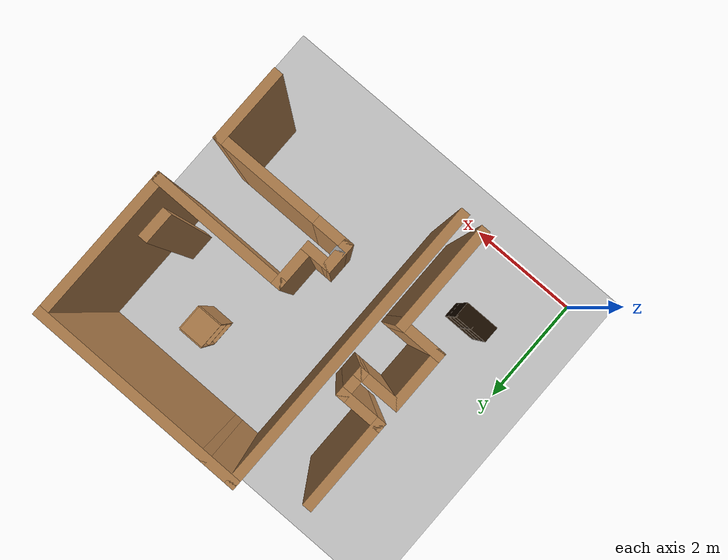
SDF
<sdf version="1.6">
 <world name="default">
  <model name="ground_plane">
   <static>1</static>
   <link name="link">
    <collision name="collision">
     <geometry><plane><normal>0 0 1</normal><size>100 100</size></plane></geometry>
     <surface><friction><ode><mu>100</mu><mu2>50</mu2></ode></friction></surface>
    </collision>
    <visual name="visual">
     <cast_shadows>0</cast_shadows>
     <geometry><plane><normal>0 0 1</normal><size>100 100</size></plane></geometry>
     <material>
      <script><uri>file://media/materials/scripts/gazebo.material</uri><name>Gazebo/Grey</name></script>
     </material>
    </visual>
   </link>
  </model>
  <model name="map_30">
   <link name="Wall_125">
    <pose>5.90506 1.81618 0 0 -0 1.5708</pose>
    <visual name="Wall_125_Visual">
     <pose>0 0 1.25 0 -0 0</pose>
     <geometry><box><size>1.25 0.15 2.5</size></box></geometry>
     <material>
      <script><uri>file://media/materials/scripts/gazebo.material</uri><name>Gazebo/Wood</name></script>
      <ambient>1 1 1 1</ambient>
      <shader type="pixel"/>
     </material>
     <meta><layer>0</layer></meta>
    </visual>
    <collision name="Wall_125_Collision">
     <pose>0 0 1.25 0 -0 0</pose>
     <geometry><box><size>1.25 0.15 2.5</size></box></geometry>
     <surface>
      <friction>
       <ode><mu>1</mu><mu2>1</mu2><fdir1>0 0 0</fdir1><slip1>0</slip1><slip2>0</slip2></ode>
       <torsional>
        <coefficient>1</coefficient>
        <patch_radius>0</patch_radius>
        <surface_radius>0</surface_radius>
        <use_patch_radius>1</use_patch_radius>
        <ode><slip>0</slip></ode>
       </torsional>
      </friction>
      <bounce><restitution_coefficient>0</restitution_coefficient><threshold>1e+06</threshold></bounce>
      <contact>
       <collide_without_contact>0</collide_without_contact>
       <collide_without_contact_bitmask>1</collide_without_contact_bitmask>
       <collide_bitmask>1</collide_bitmask>
       <ode>
        <soft_cfm>0</soft_cfm>
        <soft_erp>0.2</soft_erp>
        <kp>1e+13</kp>
        <kd>1</kd>
        <max_vel>0.01</max_vel>
        <min_depth>0</min_depth>
       </ode>
       <bullet>
        <split_impulse>1</split_impulse>
        <split_impulse_penetration_threshold>-0.01</split_impulse_penetration_threshold>
        <soft_cfm>0</soft_cfm>
        <soft_erp>0.2</soft_erp>
        <kp>1e+13</kp>
        <kd>1</kd>
       </bullet>
      </contact>
     </surface>
    </collision>
   </link>
   <link name="Wall_126">
    <pose>5.10506 2.36618 0 0 -0 3.14159</pose>
    <visual name="Wall_126_Visual">
     <pose>0 0 1.25 0 -0 0</pose>
     <geometry><box><size>1.75 0.15 2.5</size></box></geometry>
     <material>
      <script><uri>file://media/materials/scripts/gazebo.material</uri><name>Gazebo/Wood</name></script>
      <ambient>1 1 1 1</ambient>
      <shader type="pixel"/>
     </material>
     <meta><layer>0</layer></meta>
    </visual>
    <collision name="Wall_126_Collision">
     <pose>0 0 1.25 0 -0 0</pose>
     <geometry><box><size>1.75 0.15 2.5</size></box></geometry>
     <surface>
      <friction>
       <ode><mu>1</mu><mu2>1</mu2><fdir1>0 0 0</fdir1><slip1>0</slip1><slip2>0</slip2></ode>
       <torsional>
        <coefficient>1</coefficient>
        <patch_radius>0</patch_radius>
        <surface_radius>0</surface_radius>
        <use_patch_radius>1</use_patch_radius>
        <ode><slip>0</slip></ode>
       </torsional>
      </friction>
      <bounce><restitution_coefficient>0</restitution_coefficient><threshold>1e+06</threshold></bounce>
      <contact>
       <collide_without_contact>0</collide_without_contact>
       <collide_without_contact_bitmask>1</collide_without_contact_bitmask>
       <collide_bitmask>1</collide_bitmask>
       <ode>
        <soft_cfm>0</soft_cfm>
        <soft_erp>0.2</soft_erp>
        <kp>1e+13</kp>
        <kd>1</kd>
        <max_vel>0.01</max_vel>
        <min_depth>0</min_depth>
       </ode>
       <bullet>
        <split_impulse>1</split_impulse>
        <split_impulse_penetration_threshold>-0.01</split_impulse_penetration_threshold>
        <soft_cfm>0</soft_cfm>
        <soft_erp>0.2</soft_erp>
        <kp>1e+13</kp>
        <kd>1</kd>
       </bullet>
      </contact>
     </surface>
    </collision>
   </link>
   <link name="Wall_128">
    <pose>3.7255 2.52147 0 0 -0 0</pose>
    <visual name="Wall_128_Visual">
     <pose>0 0 1.25 0 -0 0</pose>
     <geometry><box><size>0.15 0.15 2.5</size></box></geometry>
     <material>
      <script><uri>file://media/materials/scripts/gazebo.material</uri><name>Gazebo/Grey</name></script>
      <ambient>1 1 1 1</ambient>
      <shader type="pixel"/>
     </material>
     <meta><layer>0</layer></meta>
    </visual>
    <collision name="Wall_128_Collision">
     <pose>0 0 1.25 0 -0 0</pose>
     <geometry><box><size>0.15 0.15 2.5</size></box></geometry>
     <surface>
      <friction>
       <ode><mu>1</mu><mu2>1</mu2><fdir1>0 0 0</fdir1><slip1>0</slip1><slip2>0</slip2></ode>
       <torsional>
        <coefficient>1</coefficient>
        <patch_radius>0</patch_radius>
        <surface_radius>0</surface_radius>
        <use_patch_radius>1</use_patch_radius>
        <ode><slip>0</slip></ode>
       </torsional>
      </friction>
      <bounce><restitution_coefficient>0</restitution_coefficient><threshold>1e+06</threshold></bounce>
      <contact>
       <collide_without_contact>0</collide_without_contact>
       <collide_without_contact_bitmask>1</collide_without_contact_bitmask>
       <collide_bitmask>1</collide_bitmask>
       <ode>
        <soft_cfm>0</soft_cfm>
        <soft_erp>0.2</soft_erp>
        <kp>1e+13</kp>
        <kd>1</kd>
        <max_vel>0.01</max_vel>
        <min_depth>0</min_depth>
       </ode>
       <bullet>
        <split_impulse>1</split_impulse>
        <split_impulse_penetration_threshold>-0.01</split_impulse_penetration_threshold>
        <soft_cfm>0</soft_cfm>
        <soft_erp>0.2</soft_erp>
        <kp>1e+13</kp>
        <kd>1</kd>
       </bullet>
      </contact>
     </surface>
    </collision>
   </link>
   <link name="Wall_130">
    <pose>4.00506 2.36618 0 0 -0 3.14159</pose>
    <visual name="Wall_130_Visual">
     <pose>0 0 1.25 0 -0 0</pose>
     <geometry><box><size>0.75 0.15 2.5</size></box></geometry>
     <material>
      <script><uri>file://media/materials/scripts/gazebo.material</uri><name>Gazebo/Wood</name></script>
      <ambient>1 1 1 1</ambient>
      <shader type="pixel"/>
     </material>
     <meta><layer>0</layer></meta>
    </visual>
    <collision name="Wall_130_Collision">
     <pose>0 0 1.25 0 -0 0</pose>
     <geometry><box><size>0.75 0.15 2.5</size></box></geometry>
     <surface>
      <friction>
       <ode><mu>1</mu><mu2>1</mu2><fdir1>0 0 0</fdir1><slip1>0</slip1><slip2>0</slip2></ode>
       <torsional>
        <coefficient>1</coefficient>
        <patch_radius>0</patch_radius>
        <surface_radius>0</surface_radius>
        <use_patch_radius>1</use_patch_radius>
        <ode><slip>0</slip></ode>
       </torsional>
      </friction>
      <bounce><restitution_coefficient>0</restitution_coefficient><threshold>1e+06</threshold></bounce>
      <contact>
       <collide_without_contact>0</collide_without_contact>
       <collide_without_contact_bitmask>1</collide_without_contact_bitmask>
       <collide_bitmask>1</collide_bitmask>
       <ode>
        <soft_cfm>0</soft_cfm>
        <soft_erp>0.2</soft_erp>
        <kp>1e+13</kp>
        <kd>1</kd>
        <max_vel>0.01</max_vel>
        <min_depth>0</min_depth>
       </ode>
       <bullet>
        <split_impulse>1</split_impulse>
        <split_impulse_penetration_threshold>-0.01</split_impulse_penetration_threshold>
        <soft_cfm>0</soft_cfm>
        <soft_erp>0.2</soft_erp>
        <kp>1e+13</kp>
        <kd>1</kd>
       </bullet>
      </contact>
     </surface>
    </collision>
   </link>
   <link name="Wall_131">
    <pose>3.70506 2.54118 0 0 -0 1.5708</pose>
    <visual name="Wall_131_Visual">
     <pose>0 0 1.25 0 -0 0</pose>
     <geometry><box><size>0.5 0.15 2.5</size></box></geometry>
     <material>
      <script><uri>file://media/materials/scripts/gazebo.material</uri><name>Gazebo/Wood</name></script>
      <ambient>1 1 1 1</ambient>
      <shader type="pixel"/>
     </material>
     <meta><layer>0</layer></meta>
    </visual>
    <collision name="Wall_131_Collision">
     <pose>0 0 1.25 0 -0 0</pose>
     <geometry><box><size>0.5 0.15 2.5</size></box></geometry>
     <surface>
      <friction>
       <ode><mu>1</mu><mu2>1</mu2><fdir1>0 0 0</fdir1><slip1>0</slip1><slip2>0</slip2></ode>
       <torsional>
        <coefficient>1</coefficient>
        <patch_radius>0</patch_radius>
        <surface_radius>0</surface_radius>
        <use_patch_radius>1</use_patch_radius>
        <ode><slip>0</slip></ode>
       </torsional>
      </friction>
      <bounce><restitution_coefficient>0</restitution_coefficient><threshold>1e+06</threshold></bounce>
      <contact>
       <collide_without_contact>0</collide_without_contact>
       <collide_without_contact_bitmask>1</collide_without_contact_bitmask>
       <collide_bitmask>1</collide_bitmask>
       <ode>
        <soft_cfm>0</soft_cfm>
        <soft_erp>0.2</soft_erp>
        <kp>1e+13</kp>
        <kd>1</kd>
        <max_vel>0.01</max_vel>
        <min_depth>0</min_depth>
       </ode>
       <bullet>
        <split_impulse>1</split_impulse>
        <split_impulse_penetration_threshold>-0.01</split_impulse_penetration_threshold>
        <soft_cfm>0</soft_cfm>
        <soft_erp>0.2</soft_erp>
        <kp>1e+13</kp>
        <kd>1</kd>
       </bullet>
      </contact>
     </surface>
    </collision>
   </link>
   <link name="Wall_132">
    <pose>3.88006 2.71618 0 0 -0 0</pose>
    <visual name="Wall_132_Visual">
     <pose>0 0 1.25 0 -0 0</pose>
     <geometry><box><size>0.5 0.15 2.5</size></box></geometry>
     <material>
      <script><uri>file://media/materials/scripts/gazebo.material</uri><name>Gazebo/Wood</name></script>
      <ambient>1 1 1 1</ambient>
      <shader type="pixel"/>
     </material>
     <meta><layer>0</layer></meta>
    </visual>
    <collision name="Wall_132_Collision">
     <pose>0 0 1.25 0 -0 0</pose>
     <geometry><box><size>0.5 0.15 2.5</size></box></geometry>
     <surface>
      <friction>
       <ode><mu>1</mu><mu2>1</mu2><fdir1>0 0 0</fdir1><slip1>0</slip1><slip2>0</slip2></ode>
       <torsional>
        <coefficient>1</coefficient>
        <patch_radius>0</patch_radius>
        <surface_radius>0</surface_radius>
        <use_patch_radius>1</use_patch_radius>
        <ode><slip>0</slip></ode>
       </torsional>
      </friction>
      <bounce><restitution_coefficient>0</restitution_coefficient><threshold>1e+06</threshold></bounce>
      <contact>
       <collide_without_contact>0</collide_without_contact>
       <collide_without_contact_bitmask>1</collide_without_contact_bitmask>
       <collide_bitmask>1</collide_bitmask>
       <ode>
        <soft_cfm>0</soft_cfm>
        <soft_erp>0.2</soft_erp>
        <kp>1e+13</kp>
        <kd>1</kd>
        <max_vel>0.01</max_vel>
        <min_depth>0</min_depth>
       </ode>
       <bullet>
        <split_impulse>1</split_impulse>
        <split_impulse_penetration_threshold>-0.01</split_impulse_penetration_threshold>
        <soft_cfm>0</soft_cfm>
        <soft_erp>0.2</soft_erp>
        <kp>1e+13</kp>
        <kd>1</kd>
       </bullet>
      </contact>
     </surface>
    </collision>
   </link>
   <link name="Wall_133">
    <pose>4.05506 3.01618 0 0 -0 1.5708</pose>
    <visual name="Wall_133_Visual">
     <pose>0 0 1.25 0 -0 0</pose>
     <geometry><box><size>0.75 0.15 2.5</size></box></geometry>
     <material>
      <script><uri>file://media/materials/scripts/gazebo.material</uri><name>Gazebo/Wood</name></script>
      <ambient>1 1 1 1</ambient>
      <shader type="pixel"/>
     </material>
     <meta><layer>0</layer></meta>
    </visual>
    <collision name="Wall_133_Collision">
     <pose>0 0 1.25 0 -0 0</pose>
     <geometry><box><size>0.75 0.15 2.5</size></box></geometry>
     <surface>
      <friction>
       <ode><mu>1</mu><mu2>1</mu2><fdir1>0 0 0</fdir1><slip1>0</slip1><slip2>0</slip2></ode>
       <torsional>
        <coefficient>1</coefficient>
        <patch_radius>0</patch_radius>
        <surface_radius>0</surface_radius>
        <use_patch_radius>1</use_patch_radius>
        <ode><slip>0</slip></ode>
       </torsional>
      </friction>
      <bounce><restitution_coefficient>0</restitution_coefficient><threshold>1e+06</threshold></bounce>
      <contact>
       <collide_without_contact>0</collide_without_contact>
       <collide_without_contact_bitmask>1</collide_without_contact_bitmask>
       <collide_bitmask>1</collide_bitmask>
       <ode>
        <soft_cfm>0</soft_cfm>
        <soft_erp>0.2</soft_erp>
        <kp>1e+13</kp>
        <kd>1</kd>
        <max_vel>0.01</max_vel>
        <min_depth>0</min_depth>
       </ode>
       <bullet>
        <split_impulse>1</split_impulse>
        <split_impulse_penetration_threshold>-0.01</split_impulse_penetration_threshold>
        <soft_cfm>0</soft_cfm>
        <soft_erp>0.2</soft_erp>
        <kp>1e+13</kp>
        <kd>1</kd>
       </bullet>
      </contact>
     </surface>
    </collision>
   </link>
   <link name="Wall_134">
    <pose>5.10506 3.31618 0 0 -0 0</pose>
    <visual name="Wall_134_Visual">
     <pose>0 0 1.25 0 -0 0</pose>
     <geometry><box><size>2.25 0.15 2.5</size></box></geometry>
     <material>
      <script><uri>file://media/materials/scripts/gazebo.material</uri><name>Gazebo/Wood</name></script>
      <ambient>1 1 1 1</ambient>
      <shader type="pixel"/>
     </material>
     <meta><layer>0</layer></meta>
    </visual>
    <collision name="Wall_134_Collision">
     <pose>0 0 1.25 0 -0 0</pose>
     <geometry><box><size>2.25 0.15 2.5</size></box></geometry>
     <surface>
      <friction>
       <ode><mu>1</mu><mu2>1</mu2><fdir1>0 0 0</fdir1><slip1>0</slip1><slip2>0</slip2></ode>
       <torsional>
        <coefficient>1</coefficient>
        <patch_radius>0</patch_radius>
        <surface_radius>0</surface_radius>
        <use_patch_radius>1</use_patch_radius>
        <ode><slip>0</slip></ode>
       </torsional>
      </friction>
      <bounce><restitution_coefficient>0</restitution_coefficient><threshold>1e+06</threshold></bounce>
      <contact>
       <collide_without_contact>0</collide_without_contact>
       <collide_without_contact_bitmask>1</collide_without_contact_bitmask>
       <collide_bitmask>1</collide_bitmask>
       <ode>
        <soft_cfm>0</soft_cfm>
        <soft_erp>0.2</soft_erp>
        <kp>1e+13</kp>
        <kd>1</kd>
        <max_vel>0.01</max_vel>
        <min_depth>0</min_depth>
       </ode>
       <bullet>
        <split_impulse>1</split_impulse>
        <split_impulse_penetration_threshold>-0.01</split_impulse_penetration_threshold>
        <soft_cfm>0</soft_cfm>
        <soft_erp>0.2</soft_erp>
        <kp>1e+13</kp>
        <kd>1</kd>
       </bullet>
      </contact>
     </surface>
    </collision>
   </link>
   <link name="Wall_135">
    <pose>6.15506 4.49118 0 0 -0 1.5708</pose>
    <visual name="Wall_135_Visual">
     <pose>0 0 1.25 0 -0 0</pose>
     <geometry><box><size>2.5 0.15 2.5</size></box></geometry>
     <material>
      <script><uri>file://media/materials/scripts/gazebo.material</uri><name>Gazebo/Wood</name></script>
      <ambient>1 1 1 1</ambient>
      <shader type="pixel"/>
     </material>
     <meta><layer>0</layer></meta>
    </visual>
    <collision name="Wall_135_Collision">
     <pose>0 0 1.25 0 -0 0</pose>
     <geometry><box><size>2.5 0.15 2.5</size></box></geometry>
     <surface>
      <friction>
       <ode><mu>1</mu><mu2>1</mu2><fdir1>0 0 0</fdir1><slip1>0</slip1><slip2>0</slip2></ode>
       <torsional>
        <coefficient>1</coefficient>
        <patch_radius>0</patch_radius>
        <surface_radius>0</surface_radius>
        <use_patch_radius>1</use_patch_radius>
        <ode><slip>0</slip></ode>
       </torsional>
      </friction>
      <bounce><restitution_coefficient>0</restitution_coefficient><threshold>1e+06</threshold></bounce>
      <contact>
       <collide_without_contact>0</collide_without_contact>
       <collide_without_contact_bitmask>1</collide_without_contact_bitmask>
       <collide_bitmask>1</collide_bitmask>
       <ode>
        <soft_cfm>0</soft_cfm>
        <soft_erp>0.2</soft_erp>
        <kp>1e+13</kp>
        <kd>1</kd>
        <max_vel>0.01</max_vel>
        <min_depth>0</min_depth>
       </ode>
       <bullet>
        <split_impulse>1</split_impulse>
        <split_impulse_penetration_threshold>-0.01</split_impulse_penetration_threshold>
        <soft_cfm>0</soft_cfm>
        <soft_erp>0.2</soft_erp>
        <kp>1e+13</kp>
        <kd>1</kd>
       </bullet>
      </contact>
     </surface>
    </collision>
   </link>
   <link name="Wall_137">
    <pose>3.30506 5.66618 0 0 -0 0</pose>
    <visual name="Wall_137_Visual">
     <pose>0 0 1.25 0 -0 0</pose>
     <geometry><box><size>0.15 0.15 2.5</size></box></geometry>
     <material>
      <script><uri>file://media/materials/scripts/gazebo.material</uri><name>Gazebo/Wood</name></script>
      <ambient>1 1 1 1</ambient>
      <shader type="pixel"/>
     </material>
     <meta><layer>0</layer></meta>
    </visual>
    <collision name="Wall_137_Collision">
     <pose>0 0 1.25 0 -0 0</pose>
     <geometry><box><size>0.15 0.15 2.5</size></box></geometry>
     <surface>
      <friction>
       <ode><mu>1</mu><mu2>1</mu2><fdir1>0 0 0</fdir1><slip1>0</slip1><slip2>0</slip2></ode>
       <torsional>
        <coefficient>1</coefficient>
        <patch_radius>0</patch_radius>
        <surface_radius>0</surface_radius>
        <use_patch_radius>1</use_patch_radius>
        <ode><slip>0</slip></ode>
       </torsional>
      </friction>
      <bounce><restitution_coefficient>0</restitution_coefficient><threshold>1e+06</threshold></bounce>
      <contact>
       <collide_without_contact>0</collide_without_contact>
       <collide_without_contact_bitmask>1</collide_without_contact_bitmask>
       <collide_bitmask>1</collide_bitmask>
       <ode>
        <soft_cfm>0</soft_cfm>
        <soft_erp>0.2</soft_erp>
        <kp>1e+13</kp>
        <kd>1</kd>
        <max_vel>0.01</max_vel>
        <min_depth>0</min_depth>
       </ode>
       <bullet>
        <split_impulse>1</split_impulse>
        <split_impulse_penetration_threshold>-0.01</split_impulse_penetration_threshold>
        <soft_cfm>0</soft_cfm>
        <soft_erp>0.2</soft_erp>
        <kp>1e+13</kp>
        <kd>1</kd>
       </bullet>
      </contact>
     </surface>
    </collision>
   </link>
   <link name="Wall_143">
    <pose>4.48006 5.66618 0 0 -0 3.14159</pose>
    <visual name="Wall_143_Visual">
     <pose>0 0 1.25 0 -0 0</pose>
     <geometry><box><size>3.5 0.15 2.5</size></box></geometry>
     <material>
      <script><uri>file://media/materials/scripts/gazebo.material</uri><name>Gazebo/Wood</name></script>
      <ambient>1 1 1 1</ambient>
      <shader type="pixel"/>
     </material>
     <meta><layer>0</layer></meta>
    </visual>
    <collision name="Wall_143_Collision">
     <pose>0 0 1.25 0 -0 0</pose>
     <geometry><box><size>3.5 0.15 2.5</size></box></geometry>
     <surface>
      <friction>
       <ode><mu>1</mu><mu2>1</mu2><fdir1>0 0 0</fdir1><slip1>0</slip1><slip2>0</slip2></ode>
       <torsional>
        <coefficient>1</coefficient>
        <patch_radius>0</patch_radius>
        <surface_radius>0</surface_radius>
        <use_patch_radius>1</use_patch_radius>
        <ode><slip>0</slip></ode>
       </torsional>
      </friction>
      <bounce><restitution_coefficient>0</restitution_coefficient><threshold>1e+06</threshold></bounce>
      <contact>
       <collide_without_contact>0</collide_without_contact>
       <collide_without_contact_bitmask>1</collide_without_contact_bitmask>
       <collide_bitmask>1</collide_bitmask>
       <ode>
        <soft_cfm>0</soft_cfm>
        <soft_erp>0.2</soft_erp>
        <kp>1e+13</kp>
        <kd>1</kd>
        <max_vel>0.01</max_vel>
        <min_depth>0</min_depth>
       </ode>
       <bullet>
        <split_impulse>1</split_impulse>
        <split_impulse_penetration_threshold>-0.01</split_impulse_penetration_threshold>
        <soft_cfm>0</soft_cfm>
        <soft_erp>0.2</soft_erp>
        <kp>1e+13</kp>
        <kd>1</kd>
       </bullet>
      </contact>
     </surface>
    </collision>
   </link>
   <link name="Wall_144">
    <pose>2.80506 3.36618 0 0 0 -1.5708</pose>
    <visual name="Wall_144_Visual">
     <pose>0 0 1.25 0 -0 0</pose>
     <geometry><box><size>4.75 0.15 2.5</size></box></geometry>
     <material>
      <script><uri>file://media/materials/scripts/gazebo.material</uri><name>Gazebo/Wood</name></script>
      <ambient>1 1 1 1</ambient>
      <shader type="pixel"/>
     </material>
     <meta><layer>0</layer></meta>
    </visual>
    <collision name="Wall_144_Collision">
     <pose>0 0 1.25 0 -0 0</pose>
     <geometry><box><size>4.75 0.15 2.5</size></box></geometry>
     <surface>
      <friction>
       <ode><mu>1</mu><mu2>1</mu2><fdir1>0 0 0</fdir1><slip1>0</slip1><slip2>0</slip2></ode>
       <torsional>
        <coefficient>1</coefficient>
        <patch_radius>0</patch_radius>
        <surface_radius>0</surface_radius>
        <use_patch_radius>1</use_patch_radius>
        <ode><slip>0</slip></ode>
       </torsional>
      </friction>
      <bounce><restitution_coefficient>0</restitution_coefficient><threshold>1e+06</threshold></bounce>
      <contact>
       <collide_without_contact>0</collide_without_contact>
       <collide_without_contact_bitmask>1</collide_without_contact_bitmask>
       <collide_bitmask>1</collide_bitmask>
       <ode>
        <soft_cfm>0</soft_cfm>
        <soft_erp>0.2</soft_erp>
        <kp>1e+13</kp>
        <kd>1</kd>
        <max_vel>0.01</max_vel>
        <min_depth>0</min_depth>
       </ode>
       <bullet>
        <split_impulse>1</split_impulse>
        <split_impulse_penetration_threshold>-0.01</split_impulse_penetration_threshold>
        <soft_cfm>0</soft_cfm>
        <soft_erp>0.2</soft_erp>
        <kp>1e+13</kp>
        <kd>1</kd>
       </bullet>
      </contact>
     </surface>
    </collision>
   </link>
   <link name="Wall_146">
    <pose>2.45506 1.86618 0 0 -0 1.5708</pose>
    <visual name="Wall_146_Visual">
     <pose>0 0 1.25 0 -0 0</pose>
     <geometry><box><size>1.75 0.15 2.5</size></box></geometry>
     <material>
      <script><uri>file://media/materials/scripts/gazebo.material</uri><name>Gazebo/Wood</name></script>
      <ambient>1 1 1 1</ambient>
      <shader type="pixel"/>
     </material>
     <meta><layer>0</layer></meta>
    </visual>
    <collision name="Wall_146_Collision">
     <pose>0 0 1.25 0 -0 0</pose>
     <geometry><box><size>1.75 0.15 2.5</size></box></geometry>
     <surface>
      <friction>
       <ode><mu>1</mu><mu2>1</mu2><fdir1>0 0 0</fdir1><slip1>0</slip1><slip2>0</slip2></ode>
       <torsional>
        <coefficient>1</coefficient>
        <patch_radius>0</patch_radius>
        <surface_radius>0</surface_radius>
        <use_patch_radius>1</use_patch_radius>
        <ode><slip>0</slip></ode>
       </torsional>
      </friction>
      <bounce><restitution_coefficient>0</restitution_coefficient><threshold>1e+06</threshold></bounce>
      <contact>
       <collide_without_contact>0</collide_without_contact>
       <collide_without_contact_bitmask>1</collide_without_contact_bitmask>
       <collide_bitmask>1</collide_bitmask>
       <ode>
        <soft_cfm>0</soft_cfm>
        <soft_erp>0.2</soft_erp>
        <kp>1e+13</kp>
        <kd>1</kd>
        <max_vel>0.01</max_vel>
        <min_depth>0</min_depth>
       </ode>
       <bullet>
        <split_impulse>1</split_impulse>
        <split_impulse_penetration_threshold>-0.01</split_impulse_penetration_threshold>
        <soft_cfm>0</soft_cfm>
        <soft_erp>0.2</soft_erp>
        <kp>1e+13</kp>
        <kd>1</kd>
       </bullet>
      </contact>
     </surface>
    </collision>
   </link>
   <link name="Wall_147">
    <pose>2.15506 2.66618 0 0 -0 3.14159</pose>
    <visual name="Wall_147_Visual">
     <pose>0 0 1.25 0 -0 0</pose>
     <geometry><box><size>0.75 0.15 2.5</size></box></geometry>
     <material>
      <script><uri>file://media/materials/scripts/gazebo.material</uri><name>Gazebo/Wood</name></script>
      <ambient>1 1 1 1</ambient>
      <shader type="pixel"/>
     </material>
     <meta><layer>0</layer></meta>
    </visual>
    <collision name="Wall_147_Collision">
     <pose>0 0 1.25 0 -0 0</pose>
     <geometry><box><size>0.75 0.15 2.5</size></box></geometry>
     <surface>
      <friction>
       <ode><mu>1</mu><mu2>1</mu2><fdir1>0 0 0</fdir1><slip1>0</slip1><slip2>0</slip2></ode>
       <torsional>
        <coefficient>1</coefficient>
        <patch_radius>0</patch_radius>
        <surface_radius>0</surface_radius>
        <use_patch_radius>1</use_patch_radius>
        <ode><slip>0</slip></ode>
       </torsional>
      </friction>
      <bounce><restitution_coefficient>0</restitution_coefficient><threshold>1e+06</threshold></bounce>
      <contact>
       <collide_without_contact>0</collide_without_contact>
       <collide_without_contact_bitmask>1</collide_without_contact_bitmask>
       <collide_bitmask>1</collide_bitmask>
       <ode>
        <soft_cfm>0</soft_cfm>
        <soft_erp>0.2</soft_erp>
        <kp>1e+13</kp>
        <kd>1</kd>
        <max_vel>0.01</max_vel>
        <min_depth>0</min_depth>
       </ode>
       <bullet>
        <split_impulse>1</split_impulse>
        <split_impulse_penetration_threshold>-0.01</split_impulse_penetration_threshold>
        <soft_cfm>0</soft_cfm>
        <soft_erp>0.2</soft_erp>
        <kp>1e+13</kp>
        <kd>1</kd>
       </bullet>
      </contact>
     </surface>
    </collision>
   </link>
   <link name="Wall_148">
    <pose>1.85506 3.09118 0 0 -0 1.5708</pose>
    <visual name="Wall_148_Visual">
     <pose>0 0 1.25 0 -0 0</pose>
     <geometry><box><size>1 0.15 2.5</size></box></geometry>
     <material>
      <script><uri>file://media/materials/scripts/gazebo.material</uri><name>Gazebo/Wood</name></script>
      <ambient>1 1 1 1</ambient>
      <shader type="pixel"/>
     </material>
     <meta><layer>0</layer></meta>
    </visual>
    <collision name="Wall_148_Collision">
     <pose>0 0 1.25 0 -0 0</pose>
     <geometry><box><size>1 0.15 2.5</size></box></geometry>
     <surface>
      <friction>
       <ode><mu>1</mu><mu2>1</mu2><fdir1>0 0 0</fdir1><slip1>0</slip1><slip2>0</slip2></ode>
       <torsional>
        <coefficient>1</coefficient>
        <patch_radius>0</patch_radius>
        <surface_radius>0</surface_radius>
        <use_patch_radius>1</use_patch_radius>
        <ode><slip>0</slip></ode>
       </torsional>
      </friction>
      <bounce><restitution_coefficient>0</restitution_coefficient><threshold>1e+06</threshold></bounce>
      <contact>
       <collide_without_contact>0</collide_without_contact>
       <collide_without_contact_bitmask>1</collide_without_contact_bitmask>
       <collide_bitmask>1</collide_bitmask>
       <ode>
        <soft_cfm>0</soft_cfm>
        <soft_erp>0.2</soft_erp>
        <kp>1e+13</kp>
        <kd>1</kd>
        <max_vel>0.01</max_vel>
        <min_depth>0</min_depth>
       </ode>
       <bullet>
        <split_impulse>1</split_impulse>
        <split_impulse_penetration_threshold>-0.01</split_impulse_penetration_threshold>
        <soft_cfm>0</soft_cfm>
        <soft_erp>0.2</soft_erp>
        <kp>1e+13</kp>
        <kd>1</kd>
       </bullet>
      </contact>
     </surface>
    </collision>
   </link>
   <link name="Wall_149">
    <pose>2.15506 3.51618 0 0 -0 0</pose>
    <visual name="Wall_149_Visual">
     <pose>0 0 1.25 0 -0 0</pose>
     <geometry><box><size>0.75 0.15 2.5</size></box></geometry>
     <material>
      <script><uri>file://media/materials/scripts/gazebo.material</uri><name>Gazebo/Wood</name></script>
      <ambient>1 1 1 1</ambient>
      <shader type="pixel"/>
     </material>
     <meta><layer>0</layer></meta>
    </visual>
    <collision name="Wall_149_Collision">
     <pose>0 0 1.25 0 -0 0</pose>
     <geometry><box><size>0.75 0.15 2.5</size></box></geometry>
     <surface>
      <friction>
       <ode><mu>1</mu><mu2>1</mu2><fdir1>0 0 0</fdir1><slip1>0</slip1><slip2>0</slip2></ode>
       <torsional>
        <coefficient>1</coefficient>
        <patch_radius>0</patch_radius>
        <surface_radius>0</surface_radius>
        <use_patch_radius>1</use_patch_radius>
        <ode><slip>0</slip></ode>
       </torsional>
      </friction>
      <bounce><restitution_coefficient>0</restitution_coefficient><threshold>1e+06</threshold></bounce>
      <contact>
       <collide_without_contact>0</collide_without_contact>
       <collide_without_contact_bitmask>1</collide_without_contact_bitmask>
       <collide_bitmask>1</collide_bitmask>
       <ode>
        <soft_cfm>0</soft_cfm>
        <soft_erp>0.2</soft_erp>
        <kp>1e+13</kp>
        <kd>1</kd>
        <max_vel>0.01</max_vel>
        <min_depth>0</min_depth>
       </ode>
       <bullet>
        <split_impulse>1</split_impulse>
        <split_impulse_penetration_threshold>-0.01</split_impulse_penetration_threshold>
        <soft_cfm>0</soft_cfm>
        <soft_erp>0.2</soft_erp>
        <kp>1e+13</kp>
        <kd>1</kd>
       </bullet>
      </contact>
     </surface>
    </collision>
   </link>
   <link name="Wall_150">
    <pose>2.45506 3.69118 0 0 -0 1.5708</pose>
    <visual name="Wall_150_Visual">
     <pose>0 0 1.25 0 -0 0</pose>
     <geometry><box><size>0.5 0.15 2.5</size></box></geometry>
     <material>
      <script><uri>file://media/materials/scripts/gazebo.material</uri><name>Gazebo/Wood</name></script>
      <ambient>1 1 1 1</ambient>
      <shader type="pixel"/>
     </material>
     <meta><layer>0</layer></meta>
    </visual>
    <collision name="Wall_150_Collision">
     <pose>0 0 1.25 0 -0 0</pose>
     <geometry><box><size>0.5 0.15 2.5</size></box></geometry>
     <surface>
      <friction>
       <ode><mu>1</mu><mu2>1</mu2><fdir1>0 0 0</fdir1><slip1>0</slip1><slip2>0</slip2></ode>
       <torsional>
        <coefficient>1</coefficient>
        <patch_radius>0</patch_radius>
        <surface_radius>0</surface_radius>
        <use_patch_radius>1</use_patch_radius>
        <ode><slip>0</slip></ode>
       </torsional>
      </friction>
      <bounce><restitution_coefficient>0</restitution_coefficient><threshold>1e+06</threshold></bounce>
      <contact>
       <collide_without_contact>0</collide_without_contact>
       <collide_without_contact_bitmask>1</collide_without_contact_bitmask>
       <collide_bitmask>1</collide_bitmask>
       <ode>
        <soft_cfm>0</soft_cfm>
        <soft_erp>0.2</soft_erp>
        <kp>1e+13</kp>
        <kd>1</kd>
        <max_vel>0.01</max_vel>
        <min_depth>0</min_depth>
       </ode>
       <bullet>
        <split_impulse>1</split_impulse>
        <split_impulse_penetration_threshold>-0.01</split_impulse_penetration_threshold>
        <soft_cfm>0</soft_cfm>
        <soft_erp>0.2</soft_erp>
        <kp>1e+13</kp>
        <kd>1</kd>
       </bullet>
      </contact>
     </surface>
    </collision>
   </link>
   <link name="Wall_151">
    <pose>2.15506 3.86618 0 0 -0 3.14159</pose>
    <visual name="Wall_151_Visual">
     <pose>0 0 1.25 0 -0 0</pose>
     <geometry><box><size>0.75 0.15 2.5</size></box></geometry>
     <material>
      <script><uri>file://media/materials/scripts/gazebo.material</uri><name>Gazebo/Wood</name></script>
      <ambient>1 1 1 1</ambient>
      <shader type="pixel"/>
     </material>
     <meta><layer>0</layer></meta>
    </visual>
    <collision name="Wall_151_Collision">
     <pose>0 0 1.25 0 -0 0</pose>
     <geometry><box><size>0.75 0.15 2.5</size></box></geometry>
     <surface>
      <friction>
       <ode><mu>1</mu><mu2>1</mu2><fdir1>0 0 0</fdir1><slip1>0</slip1><slip2>0</slip2></ode>
       <torsional>
        <coefficient>1</coefficient>
        <patch_radius>0</patch_radius>
        <surface_radius>0</surface_radius>
        <use_patch_radius>1</use_patch_radius>
        <ode><slip>0</slip></ode>
       </torsional>
      </friction>
      <bounce><restitution_coefficient>0</restitution_coefficient><threshold>1e+06</threshold></bounce>
      <contact>
       <collide_without_contact>0</collide_without_contact>
       <collide_without_contact_bitmask>1</collide_without_contact_bitmask>
       <collide_bitmask>1</collide_bitmask>
       <ode>
        <soft_cfm>0</soft_cfm>
        <soft_erp>0.2</soft_erp>
        <kp>1e+13</kp>
        <kd>1</kd>
        <max_vel>0.01</max_vel>
        <min_depth>0</min_depth>
       </ode>
       <bullet>
        <split_impulse>1</split_impulse>
        <split_impulse_penetration_threshold>-0.01</split_impulse_penetration_threshold>
        <soft_cfm>0</soft_cfm>
        <soft_erp>0.2</soft_erp>
        <kp>1e+13</kp>
        <kd>1</kd>
       </bullet>
      </contact>
     </surface>
    </collision>
   </link>
   <link name="Wall_152">
    <pose>1.85506 4.54118 0 0 -0 1.5708</pose>
    <visual name="Wall_152_Visual">
     <pose>0 0 1.25 0 -0 0</pose>
     <geometry><box><size>1.5 0.15 2.5</size></box></geometry>
     <material>
      <script><uri>file://media/materials/scripts/gazebo.material</uri><name>Gazebo/Wood</name></script>
      <ambient>1 1 1 1</ambient>
      <shader type="pixel"/>
     </material>
     <meta><layer>0</layer></meta>
    </visual>
    <collision name="Wall_152_Collision">
     <pose>0 0 1.25 0 -0 0</pose>
     <geometry><box><size>1.5 0.15 2.5</size></box></geometry>
     <surface>
      <friction>
       <ode><mu>1</mu><mu2>1</mu2><fdir1>0 0 0</fdir1><slip1>0</slip1><slip2>0</slip2></ode>
       <torsional>
        <coefficient>1</coefficient>
        <patch_radius>0</patch_radius>
        <surface_radius>0</surface_radius>
        <use_patch_radius>1</use_patch_radius>
        <ode><slip>0</slip></ode>
       </torsional>
      </friction>
      <bounce><restitution_coefficient>0</restitution_coefficient><threshold>1e+06</threshold></bounce>
      <contact>
       <collide_without_contact>0</collide_without_contact>
       <collide_without_contact_bitmask>1</collide_without_contact_bitmask>
       <collide_bitmask>1</collide_bitmask>
       <ode>
        <soft_cfm>0</soft_cfm>
        <soft_erp>0.2</soft_erp>
        <kp>1e+13</kp>
        <kd>1</kd>
        <max_vel>0.01</max_vel>
        <min_depth>0</min_depth>
       </ode>
       <bullet>
        <split_impulse>1</split_impulse>
        <split_impulse_penetration_threshold>-0.01</split_impulse_penetration_threshold>
        <soft_cfm>0</soft_cfm>
        <soft_erp>0.2</soft_erp>
        <kp>1e+13</kp>
        <kd>1</kd>
       </bullet>
      </contact>
     </surface>
    </collision>
   </link>
   <link name="Wall_204">
    <pose>5.78684 3.81203 0 0 0 -1.5708</pose>
    <visual name="Wall_204_Visual">
     <pose>0 0 1.25 0 -0 0</pose>
     <geometry><box><size>0.5 0.15 2.5</size></box></geometry>
     <material>
      <script><uri>file://media/materials/scripts/gazebo.material</uri><name>Gazebo/Wood</name></script>
      <ambient>1 1 1 1</ambient>
      <shader type="pixel"/>
     </material>
     <meta><layer>0</layer></meta>
    </visual>
    <collision name="Wall_204_Collision">
     <pose>0 0 1.25 0 -0 0</pose>
     <geometry><box><size>0.5 0.15 2.5</size></box></geometry>
     <surface>
      <friction>
       <ode><mu>1</mu><mu2>1</mu2><fdir1>0 0 0</fdir1><slip1>0</slip1><slip2>0</slip2></ode>
       <torsional>
        <coefficient>1</coefficient>
        <patch_radius>0</patch_radius>
        <surface_radius>0</surface_radius>
        <use_patch_radius>1</use_patch_radius>
        <ode><slip>0</slip></ode>
       </torsional>
      </friction>
      <bounce><restitution_coefficient>0</restitution_coefficient><threshold>1e+06</threshold></bounce>
      <contact>
       <collide_without_contact>0</collide_without_contact>
       <collide_without_contact_bitmask>1</collide_without_contact_bitmask>
       <collide_bitmask>1</collide_bitmask>
       <ode>
        <soft_cfm>0</soft_cfm>
        <soft_erp>0.2</soft_erp>
        <kp>1e+13</kp>
        <kd>1</kd>
        <max_vel>0.01</max_vel>
        <min_depth>0</min_depth>
       </ode>
       <bullet>
        <split_impulse>1</split_impulse>
        <split_impulse_penetration_threshold>-0.01</split_impulse_penetration_threshold>
        <soft_cfm>0</soft_cfm>
        <soft_erp>0.2</soft_erp>
        <kp>1e+13</kp>
        <kd>1</kd>
       </bullet>
      </contact>
     </surface>
    </collision>
   </link>
   <static>1</static>
   <pose>-0.242413 -0.443035 0 0 -0 0</pose>
  </model>
  <model name="6_Cube_StorageE">
   <link name="Wall_0">
    <pose>0 0 0.01 0 -0 0</pose>
    <inertial>
     <mass>1.6201</mass>
     <inertia><ixx>0.0119</ixx><iyy>0.0631</iyy><izz>0.0513</izz><ixy>0</ixy><ixz>0</ixz><iyz>0</iyz></inertia>
    </inertial>
    <collision name="Wall_0_Collision"><geometry><box><size>0.616 0.296 0.02</size></box></geometry></collision>
    <visual name="Wall_0_Visual">
     <geometry><box><size>0.616 0.296 0.02</size></box></geometry>
     <material>
      <script><uri>file://media/materials/scripts/gazebo.material</uri><name>Gazebo/Grey</name></script>
      <ambient>0.105882 0.0509804 0 1</ambient>
     </material>
    </visual>
   </link>
   <joint name="0_2" type="fixed">
    <pose>-0.308 0 0 0 -0 0</pose>
    <parent>Wall_2</parent>
    <child>Wall_0</child>
    <axis>
     <xyz>1 0 0</xyz>
     <use_parent_model_frame>0</use_parent_model_frame>
     <limit><lower>-1e+16</lower><upper>1e+16</upper></limit>
    </axis>
   </joint>
   <joint name="0_12" type="fixed">
    <parent>Wall_12</parent>
    <child>Wall_0</child>
    <axis>
     <xyz>0 0 1</xyz>
     <use_parent_model_frame>0</use_parent_model_frame>
     <limit><lower>-1e+16</lower><upper>1e+16</upper></limit>
    </axis>
   </joint>
   <joint name="0_4" type="fixed">
    <pose>0.308 0 0 0 -0 0</pose>
    <parent>Wall_4</parent>
    <child>Wall_0</child>
    <axis>
     <xyz>1 0 0</xyz>
     <use_parent_model_frame>0</use_parent_model_frame>
     <limit><lower>-1e+16</lower><upper>1e+16</upper></limit>
    </axis>
   </joint>
   <link name="Wall_10">
    <pose>0 0 0.61 0 -0 0</pose>
    <inertial>
     <mass>1.6201</mass>
     <inertia><ixx>0.0119</ixx><iyy>0.0631</iyy><izz>0.0513</izz><ixy>0</ixy><ixz>0</ixz><iyz>0</iyz></inertia>
    </inertial>
    <collision name="Wall_10_Collision"><geometry><box><size>0.616 0.296 0.02</size></box></geometry></collision>
    <visual name="Wall_10_Visual">
     <geometry><box><size>0.616 0.296 0.02</size></box></geometry>
     <material>
      <script><uri>file://media/materials/scripts/gazebo.material</uri><name>Gazebo/Grey</name></script>
      <ambient>0.105882 0.0509804 0 1</ambient>
     </material>
    </visual>
   </link>
   <joint name="10_2" type="fixed">
    <pose>-0.308 0 0 0 -0 0</pose>
    <parent>Wall_2</parent>
    <child>Wall_10</child>
    <axis>
     <xyz>1 0 0</xyz>
     <use_parent_model_frame>0</use_parent_model_frame>
     <limit><lower>-1e+16</lower><upper>1e+16</upper></limit>
    </axis>
   </joint>
   <joint name="10_12" type="fixed">
    <parent>Wall_12</parent>
    <child>Wall_10</child>
    <axis>
     <xyz>0 0 1</xyz>
     <use_parent_model_frame>0</use_parent_model_frame>
     <limit><lower>-1e+16</lower><upper>1e+16</upper></limit>
    </axis>
   </joint>
   <joint name="10_4" type="fixed">
    <pose>0.308 0 0 0 -0 0</pose>
    <parent>Wall_4</parent>
    <child>Wall_10</child>
    <axis>
     <xyz>1 0 0</xyz>
     <use_parent_model_frame>0</use_parent_model_frame>
     <limit><lower>-1e+16</lower><upper>1e+16</upper></limit>
    </axis>
   </joint>
   <link name="Wall_12">
    <pose>0 0 0.4575 0 -0 0</pose>
    <inertial>
     <mass>2.4065</mass>
     <inertia><ixx>0.0177</ixx><iyy>0.1855</iyy><izz>0.168</izz><ixy>0</ixy><ixz>0</ixz><iyz>0</iyz></inertia>
    </inertial>
    <collision name="Wall_12_Collision"><geometry><box><size>0.02 0.296 0.915</size></box></geometry></collision>
    <visual name="Wall_12_Visual">
     <geometry><box><size>0.02 0.296 0.915</size></box></geometry>
     <material>
      <script><uri>file://media/materials/scripts/gazebo.material</uri><name>Gazebo/Grey</name></script>
      <ambient>0.105882 0.0509804 0 1</ambient>
     </material>
    </visual>
   </link>
   <link name="Wall_2">
    <pose>-0.298 0 0.4575 0 -0 0</pose>
    <inertial>
     <mass>2.4065</mass>
     <inertia><ixx>0.0177</ixx><iyy>0.1855</iyy><izz>0.168</izz><ixy>0</ixy><ixz>0</ixz><iyz>0</iyz></inertia>
    </inertial>
    <collision name="Wall_2_Collision"><geometry><box><size>0.02 0.296 0.915</size></box></geometry></collision>
    <visual name="Wall_2_Visual">
     <geometry><box><size>0.02 0.296 0.915</size></box></geometry>
     <material>
      <script><uri>file://media/materials/scripts/gazebo.material</uri><name>Gazebo/Grey</name></script>
      <ambient>0.105882 0.0509804 0 1</ambient>
     </material>
    </visual>
   </link>
   <link name="Wall_4">
    <pose>0.298 0 0.4575 0 -0 0</pose>
    <inertial>
     <mass>2.4065</mass>
     <inertia><ixx>0.0177</ixx><iyy>0.1855</iyy><izz>0.168</izz><ixy>0</ixy><ixz>0</ixz><iyz>0</iyz></inertia>
    </inertial>
    <collision name="Wall_4_Collision"><geometry><box><size>0.02 0.296 0.915</size></box></geometry></collision>
    <visual name="Wall_4_Visual">
     <geometry><box><size>0.02 0.296 0.915</size></box></geometry>
     <material>
      <script><uri>file://media/materials/scripts/gazebo.material</uri><name>Gazebo/Grey</name></script>
      <ambient>0.105882 0.0509804 0 1</ambient>
     </material>
    </visual>
   </link>
   <link name="Wall_6">
    <pose>0 0 0.905 0 -0 0</pose>
    <inertial>
     <mass>1.6201</mass>
     <inertia><ixx>0.0119</ixx><iyy>0.0631</iyy><izz>0.0513</izz><ixy>0</ixy><ixz>0</ixz><iyz>0</iyz></inertia>
    </inertial>
    <collision name="Wall_6_Collision"><geometry><box><size>0.616 0.296 0.02</size></box></geometry></collision>
    <visual name="Wall_6_Visual">
     <geometry><box><size>0.616 0.296 0.02</size></box></geometry>
     <material>
      <script><uri>file://media/materials/scripts/gazebo.material</uri><name>Gazebo/Grey</name></script>
      <ambient>0.105882 0.0509804 0 1</ambient>
     </material>
    </visual>
   </link>
   <joint name="6_2" type="fixed">
    <pose>-0.308 0 0 0 -0 0</pose>
    <parent>Wall_2</parent>
    <child>Wall_6</child>
    <axis>
     <xyz>2 0 0</xyz>
     <use_parent_model_frame>0</use_parent_model_frame>
     <limit><lower>-1e+16</lower><upper>1e+16</upper></limit>
    </axis>
   </joint>
   <joint name="6_12" type="fixed">
    <parent>Wall_12</parent>
    <child>Wall_6</child>
    <axis>
     <xyz>0 0 1</xyz>
     <use_parent_model_frame>0</use_parent_model_frame>
     <limit><lower>-1e+16</lower><upper>1e+16</upper></limit>
    </axis>
   </joint>
   <joint name="6_4" type="fixed">
    <pose>0.308 0 0 0 -0 0</pose>
    <parent>Wall_4</parent>
    <child>Wall_6</child>
    <axis>
     <xyz>1 0 0</xyz>
     <use_parent_model_frame>0</use_parent_model_frame>
     <limit><lower>-1e+16</lower><upper>1e+16</upper></limit>
    </axis>
   </joint>
   <link name="Wall_8">
    <pose>0 0 0.305 0 -0 0</pose>
    <inertial>
     <mass>1.6201</mass>
     <inertia><ixx>0.0119</ixx><iyy>0.0631</iyy><izz>0.0513</izz><ixy>0</ixy><ixz>0</ixz><iyz>0</iyz></inertia>
    </inertial>
    <collision name="Wall_8_Collision"><geometry><box><size>0.616 0.296 0.02</size></box></geometry></collision>
    <visual name="Wall_8_Visual">
     <geometry><box><size>0.616 0.296 0.02</size></box></geometry>
     <material>
      <script><uri>file://media/materials/scripts/gazebo.material</uri><name>Gazebo/Grey</name></script>
      <ambient>0.105882 0.0509804 0 1</ambient>
     </material>
    </visual>
   </link>
   <joint name="8_2" type="fixed">
    <pose>-0.308 0 0 0 -0 0</pose>
    <parent>Wall_2</parent>
    <child>Wall_8</child>
    <axis>
     <xyz>1 0 0</xyz>
     <use_parent_model_frame>0</use_parent_model_frame>
     <limit><lower>-1e+16</lower><upper>1e+16</upper></limit>
    </axis>
   </joint>
   <joint name="8_12" type="fixed">
    <parent>Wall_12</parent>
    <child>Wall_8</child>
    <axis>
     <xyz>0 0 1</xyz>
     <use_parent_model_frame>0</use_parent_model_frame>
     <limit><lower>-1e+16</lower><upper>1e+16</upper></limit>
    </axis>
   </joint>
   <joint name="8_4" type="fixed">
    <pose>0.308 0 0 0 -0 0</pose>
    <parent>Wall_4</parent>
    <child>Wall_8</child>
    <axis>
     <xyz>1 0 0</xyz>
     <use_parent_model_frame>0</use_parent_model_frame>
     <limit><lower>-1e+16</lower><upper>1e+16</upper></limit>
    </axis>
   </joint>
   <static>1</static>
   <pose>1.20108 1.351 0 0 -0 0</pose>
  </model>
  <model name="cabinet_0">
   <static>1</static>
   <link name="cabinet_bottom_plate">
    <inertial>
     <pose>0 0 -1 0 -0 0</pose>
     <inertia><ixx>2.05</ixx><ixy>0</ixy><ixz>0</ixz><iyy>2.05</iyy><iyz>0</iyz><izz>2.05</izz></inertia>
     <mass>25</mass>
    </inertial>
    <collision name="cabinet_bottom_plate_geom">
     <pose>0 0 0.01 0 -0 0</pose>
     <geometry><box><size>0.45 0.45 0.02</size></box></geometry>
    </collision>
    <visual name="cabinet_bottom_plate_geom_visual">
     <pose>0 0 0.01 0 -0 0</pose>
     <geometry><box><size>0.45 0.45 0.02</size></box></geometry>
     <material>
      <script><uri>file://media/materials/scripts/gazebo.material</uri><name>Gazebo/Wood</name></script>
     </material>
    </visual>
    <collision name="cabinet_bottom_plate_geom_cabinet_back_plate">
     <pose>0.235 0 0.51 0 -0 0</pose>
     <geometry><box><size>0.02 0.45 1.02</size></box></geometry>
    </collision>
    <visual name="cabinet_bottom_plate_geom_cabinet_back_plate_visual">
     <pose>0.235 0 0.51 0 -0 0</pose>
     <geometry><box><size>0.02 0.45 1.02</size></box></geometry>
     <material>
      <script><uri>file://media/materials/scripts/gazebo.material</uri><name>Gazebo/Wood</name></script>
     </material>
    </visual>
    <collision name="cabinet_bottom_plate_geom_cabinet_left_plate">
     <pose>0 0.235 0.51 0 -0 0</pose>
     <geometry><box><size>0.45 0.02 1.02</size></box></geometry>
    </collision>
    <visual name="cabinet_bottom_plate_geom_cabinet_left_plate_visual">
     <pose>0 0.235 0.51 0 -0 0</pose>
     <geometry><box><size>0.45 0.02 1.02</size></box></geometry>
     <material>
      <script><uri>file://media/materials/scripts/gazebo.material</uri><name>Gazebo/Wood</name></script>
     </material>
    </visual>
    <collision name="cabinet_bottom_plate_geom_cabinet_middle_plate">
     <pose>0 0 0.51 0 -0 0</pose>
     <geometry><box><size>0.45 0.45 0.02</size></box></geometry>
    </collision>
    <visual name="cabinet_bottom_plate_geom_cabinet_middle_plate_visual">
     <pose>0 0 0.51 0 -0 0</pose>
     <geometry><box><size>0.45 0.45 0.02</size></box></geometry>
     <material>
      <script><uri>file://media/materials/scripts/gazebo.material</uri><name>Gazebo/Wood</name></script>
     </material>
    </visual>
    <collision name="cabinet_bottom_plate_geom_cabinet_right_plate">
     <pose>0 -0.235 0.51 0 -0 0</pose>
     <geometry><box><size>0.45 0.02 1.02</size></box></geometry>
    </collision>
    <visual name="cabinet_bottom_plate_geom_cabinet_right_plate_visual">
     <pose>0 -0.235 0.51 0 -0 0</pose>
     <geometry><box><size>0.45 0.02 1.02</size></box></geometry>
     <material>
      <script><uri>file://media/materials/scripts/gazebo.material</uri><name>Gazebo/Wood</name></script>
     </material>
    </visual>
    <collision name="cabinet_bottom_plate_geom_cabinet_top_plate">
     <pose>0 0 1.01 0 -0 0</pose>
     <geometry><box><size>0.45 0.45 0.02</size></box></geometry>
    </collision>
    <visual name="cabinet_bottom_plate_geom_cabinet_top_plate_visual">
     <pose>0 0 1.01 0 -0 0</pose>
     <geometry><box><size>0.45 0.45 0.02</size></box></geometry>
     <material>
      <script><uri>file://media/materials/scripts/gazebo.material</uri><name>Gazebo/Wood</name></script>
     </material>
    </visual>
   </link>
   <pose>4.43672 4.24335 0 0 -0 0</pose>
  </model>
 </world>
</sdf>
